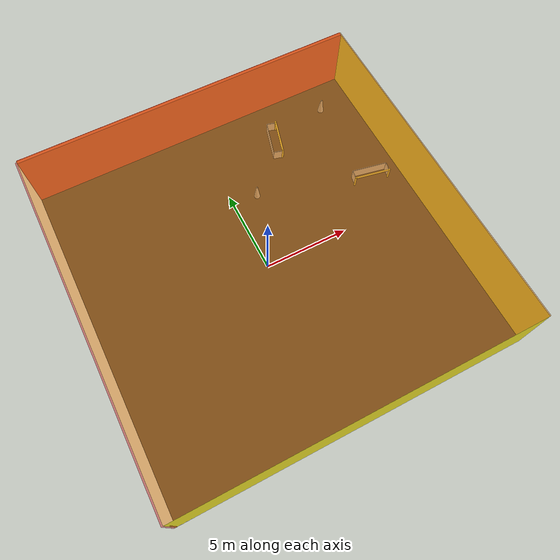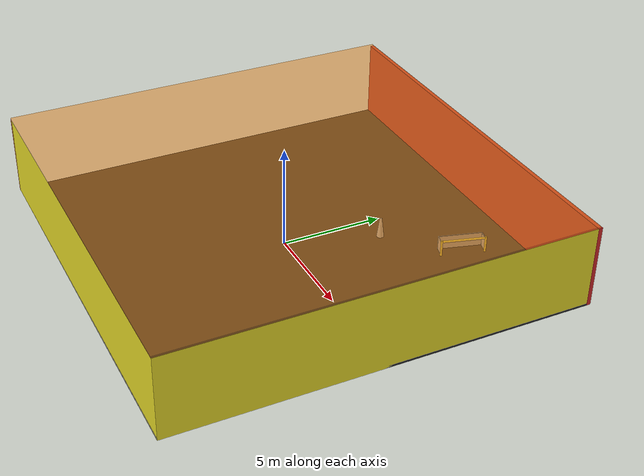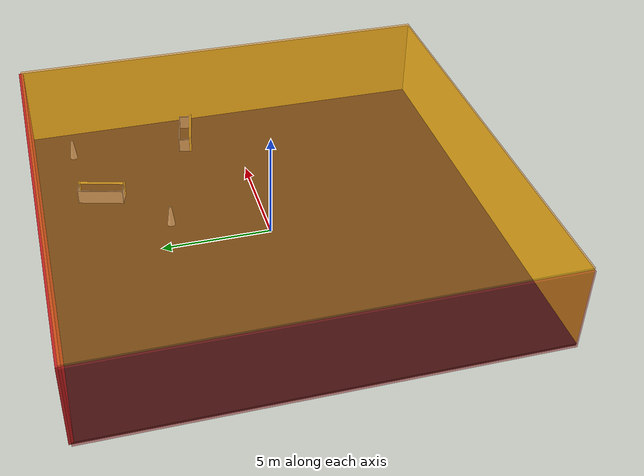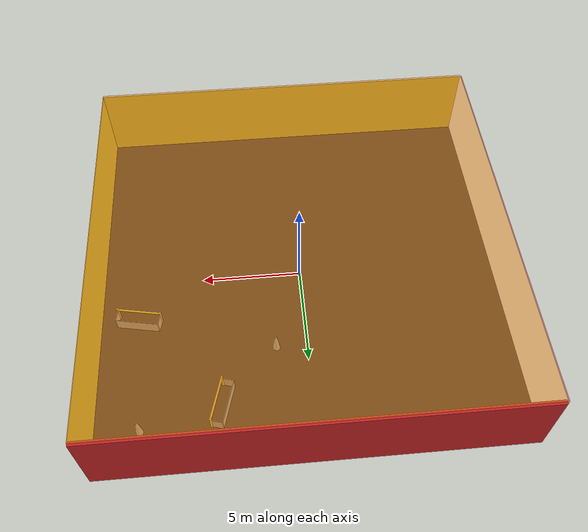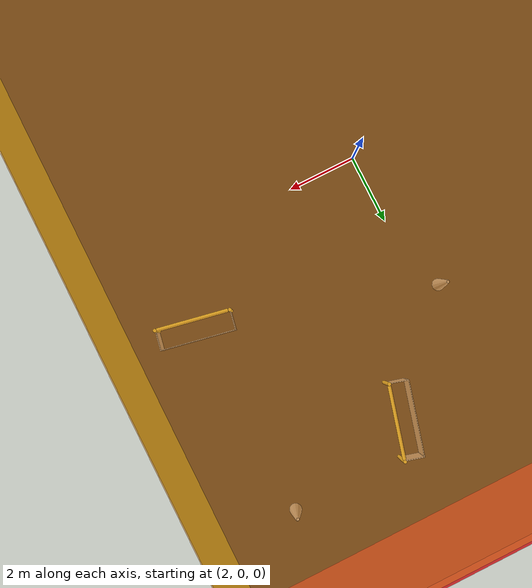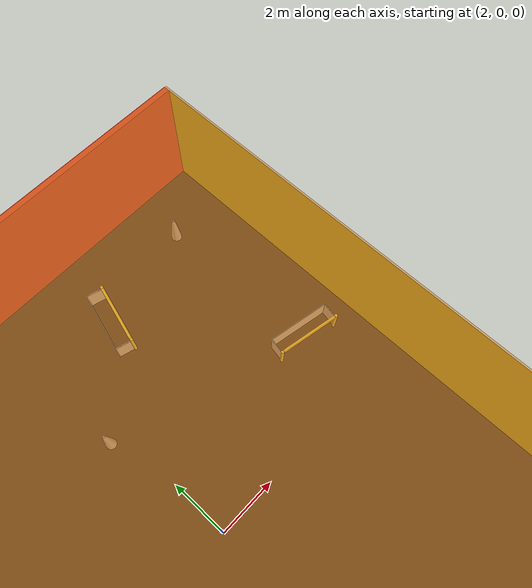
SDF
<sdf version="1.4">
 <world name="default">
  <physics type="ode">
   <max_step_size>0.001</max_step_size>
   <real_time_factor>1</real_time_factor>
   <real_time_update_rate>1000</real_time_update_rate>
   <gravity>0 0 -9.8</gravity>
  </physics>
  <scene><ambient>0.4 0.4 0.4 1</ambient><background>0.7 0.7 0.7 1</background><shadows>1</shadows></scene>
  <model name="Surrounding">
   <static>1</static>
   <link name="Ceiling">
    <collision name="Ceiling_Collision"><geometry><box><size>20 20 0.1</size></box></geometry></collision>
    <visual name="Ceiling_Visual">
     <geometry><box><size>20 20 0.1</size></box></geometry>
     <material>
      <script>
       <uri>file://media/materials/scripts/gazebo.material</uri>
       <name>Gazebo/OrangeTransparent</name>
      </script>
     </material>
    </visual>
    <pose>0 0 4.05 0 0 0</pose>
   </link>
   <link name="Wall_South">
    <collision name="Wall_South_Collision">
     <geometry><box><size>20 0 4</size></box></geometry>
     <pose>0 0 2 0 -0 0</pose>
    </collision>
    <visual name="Wall_South_Visual">
     <pose>0 0 2 0 -0 0</pose>
     <geometry><box><size>20 0 4</size></box></geometry>
     <material>
      <script><uri>file://media/materials/scripts/gazebo.material</uri><name>Gazebo/Yellow</name></script>
     </material>
    </visual>
    <velocity_decay><linear>0</linear><angular>0</angular></velocity_decay>
    <pose>0 -10 0 0 -0 0</pose>
   </link>
   <link name="Wall_East">
    <collision name="Wall_21_Collision">
     <geometry><box><size>20 0 4</size></box></geometry>
     <pose>0 0 2 0 -0 0</pose>
    </collision>
    <visual name="Wall_21_Visual">
     <pose>0 0 2 0 -0 0</pose>
     <geometry><box><size>20 0 4</size></box></geometry>
     <material>
      <script><uri>file://media/materials/scripts/gazebo.material</uri><name>Gazebo/YellowGlow</name></script>
     </material>
    </visual>
    <velocity_decay><linear>0</linear><angular>0</angular></velocity_decay>
    <pose>10 0 0 0 -0 1.5708</pose>
   </link>
   <link name="Wall_North">
    <collision name="Wall_22_Collision">
     <geometry><box><size>20 0.2 4</size></box></geometry>
     <pose>0 0 2 0 -0 0</pose>
    </collision>
    <visual name="Wall_22_Visual">
     <pose>0 0 2 0 -0 0</pose>
     <geometry><box><size>20 0.2 4</size></box></geometry>
     <material>
      <script><uri>file://media/materials/scripts/gazebo.material</uri><name>Gazebo/RedBright</name></script>
     </material>
    </visual>
    <velocity_decay><linear>0</linear><angular>0</angular></velocity_decay>
    <pose>0 10 0 0 -0 0</pose>
   </link>
   <link name="Wall_West">
    <collision name="Wall_23_Collision">
     <geometry><box><size>20 0.2 4</size></box></geometry>
     <pose>0 0 2 0 -0 0</pose>
    </collision>
    <visual name="Wall_23_Visual">
     <pose>0 0 2 0 -0 0</pose>
     <geometry><box><size>20 0.2 4</size></box></geometry>
     <material>
      <script><uri>file://media/materials/scripts/gazebo.material</uri><name>Gazebo/RedTransparent</name></script>
     </material>
    </visual>
    <velocity_decay><linear>0</linear><angular>0</angular></velocity_decay>
    <pose>-10 0 0 0 0 -1.5708</pose>
   </link>
   <link name="Ground_link">
    <collision name="collision">
     <pose>0 0 .05 0 -0 0</pose>
     <geometry><box><size>20 20 0.1</size></box></geometry>
    </collision>
    <visual name="visual">
     <pose>0 0 .05 0 -0 0</pose>
     <geometry><box><size>20 20 0.1</size></box></geometry>
     <material>
      <script><uri>file://media/materials/scripts/gazebo.material</uri><name>Gazebo/FlatBlack</name></script>
     </material>
    </visual>
   </link>
   <static>1</static>
  </model>
  <spherical_coordinates>
   <surface_model>EARTH_WGS84</surface_model>
   <latitude_deg>0</latitude_deg>
   <longitude_deg>0</longitude_deg>
   <elevation>0</elevation>
   <heading_deg>0</heading_deg>
  </spherical_coordinates>
  <light name="lightball_0" type="diffuse">
   <diffuse>0.8 0.8 0.8 1</diffuse>
   <specular>0.2 0.2 0.2 1</specular>
   <attenuation>
    <range>100</range>
    <constant>0.7</constant>
    <linear>0.01</linear>
    <quadratic>0.001</quadratic>
   </attenuation>
   <direction>-0.5 0.1 -0.9</direction>
   <pose>-4.95083053598 4.18988742543 0.772949026911 0 0 0</pose>
  </light>
  <light name="lightball_1" type="diffuse">
   <diffuse>0.8 0.8 0.8 1</diffuse>
   <specular>0.2 0.2 0.2 1</specular>
   <attenuation>
    <range>100</range>
    <constant>0.7</constant>
    <linear>0.01</linear>
    <quadratic>0.001</quadratic>
   </attenuation>
   <direction>-0.5 0.1 -0.9</direction>
   <pose>3.17342726647 8.47622148887 3.51902212505 0 0 0</pose>
  </light>
  <light name="lightball_2" type="diffuse">
   <diffuse>0.8 0.8 0.8 1</diffuse>
   <specular>0.2 0.2 0.2 1</specular>
   <attenuation>
    <range>100</range>
    <constant>0.7</constant>
    <linear>0.01</linear>
    <quadratic>0.001</quadratic>
   </attenuation>
   <direction>-0.5 0.1 -0.9</direction>
   <pose>7.07802612022 -5.76666487442 2.21263045096 0 0 0</pose>
  </light>
  <light name="lightball_3" type="diffuse">
   <diffuse>0.8 0.8 0.8 1</diffuse>
   <specular>0.2 0.2 0.2 1</specular>
   <attenuation>
    <range>100</range>
    <constant>0.7</constant>
    <linear>0.01</linear>
    <quadratic>0.001</quadratic>
   </attenuation>
   <direction>-0.5 0.1 -0.9</direction>
   <pose>0.154637514036 -9.97233112799 1.9669074314 0 0 0</pose>
  </light>
  <light name="lightball_4" type="diffuse">
   <diffuse>0.8 0.8 0.8 1</diffuse>
   <specular>0.2 0.2 0.2 1</specular>
   <attenuation>
    <range>100</range>
    <constant>0.7</constant>
    <linear>0.01</linear>
    <quadratic>0.001</quadratic>
   </attenuation>
   <direction>-0.5 0.1 -0.9</direction>
   <pose>3.58215922622 3.08481089853 2.00536578677 0 0 0</pose>
  </light>
  <include>
   <uri>model://construction_cone</uri>
   <pose>1.50408808697 4.30787398465 0 0 0 1.19663750094</pose>
  </include>
  <include>
   <uri>model://robocup_3Dsim_goal</uri>
   <pose>4.41064760042 7.07111796036 0 0 0 2.8696991049</pose>
  </include>
  <include>
   <uri>model://robocup_3Dsim_goal</uri>
   <pose>8.08748723087 2.14546316918 0 0 0 1.37834946917</pose>
  </include>
  <include>
   <uri>model://construction_cone</uri>
   <pose>7.92153490107 8.08541081361 0 0 0 2.80119638106</pose>
  </include>
 </world>
</sdf>

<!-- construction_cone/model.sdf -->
<sdf version="1.5">
  <model name="Construction Cone">
    <link name="link">
      <collision name="collision">
        <geometry>
          <mesh>
            <scale>10 10 10</scale>
            <uri>file://isr-testbed/construction_cone/meshes/construction_cone.dae</uri>
          </mesh>
        </geometry>
      </collision>
      <visual name="visual">
        <geometry>
          <mesh>
            <scale>10 10 10</scale>
            <uri>file://isr-testbed/construction_cone/meshes/construction_cone.dae</uri>
          </mesh>
        </geometry>
      </visual>
    </link>
  </model>
</sdf>

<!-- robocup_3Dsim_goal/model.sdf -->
<sdf version="1.5">
  <model name="robocup_3d_goal">
    <static>true</static>
    <link name="left_post">
      <pose>0 1.05 0.45 0 0 0</pose>
      <collision name="collision">
        <geometry>
          <cylinder>
            <radius>0.05</radius>
            <length>0.9</length>
          </cylinder>
        </geometry>
      </collision>
      <visual name="visual">
        <geometry>
          <cylinder>
            <radius>0.05</radius>
            <length>0.9</length>
          </cylinder>
        </geometry>
        <material>
          <script>
            <uri>file://media/materials/scripts/gazebo.material</uri>
            <name>Gazebo/ZincYellow</name>
          </script>
        </material>
      </visual>
    </link>
    <link name="left_support_horiz_lower">
      <pose>0.30 1.05 0.01 0 0 0</pose>
      <collision name="collision">
        <geometry>
          <box>
            <size>0.50 0.02 0.02</size>
          </box>
        </geometry>
      </collision>
      <visual name="visual">
        <geometry>
          <box>
            <size>0.50 0.02 0.02</size>
          </box>
        </geometry>
        <material>
          <script>
            <uri>file://media/materials/scripts/gazebo.material</uri>
            <name>Gazebo/White</name>
          </script>
        </material>
      </visual>
    </link>
    <link name="left_support_horiz_upper">
      <pose>0.30 1.05 0.79 0 0 0</pose>
      <collision name="collision">
        <geometry>
          <box>
            <size>0.50 0.02 0.02</size>
          </box>
        </geometry>
      </collision>
      <visual name="visual">
        <geometry>
          <box>
            <size>0.50 0.02 0.02</size>
          </box>
        </geometry>
        <material>
          <script>
            <uri>file://media/materials/scripts/gazebo.material</uri>
            <name>Gazebo/White</name>
          </script>
        </material>
      </visual>
    </link>
    <link name="left_support_vertical">
      <pose>0.56 1.05 0.4 0 1.5708 0</pose>
      <collision name="collision">
        <geometry>
          <box>
            <size>0.80 0.02 0.02</size>
          </box>
        </geometry>
      </collision>
      <visual name="visual">
        <geometry>
          <box>
            <size>0.80 0.02 0.02</size>
          </box>
        </geometry>
        <material>
          <script>
            <uri>file://media/materials/scripts/gazebo.material</uri>
            <name>Gazebo/White</name>
          </script>
        </material>
      </visual>
    </link>
    <link name="right_support_horiz_lower">
      <pose>0.30 -1.05 0.01 0 0 0</pose>
      <collision name="collision">
        <geometry>
          <box>
            <size>0.50 0.02 0.02</size>
          </box>
        </geometry>
      </collision>
      <visual name="visual">
        <geometry>
          <box>
            <size>0.50 0.02 0.02</size>
          </box>
        </geometry>
        <material>
          <script>
            <uri>file://media/materials/scripts/gazebo.material</uri>
            <name>Gazebo/White</name>
          </script>
        </material>
      </visual>
    </link>
    <link name="right_support_horiz_upper">
      <pose>0.30 -1.05 0.79 0 0 0</pose>
      <collision name="collision">
        <geometry>
          <box>
            <size>0.50 0.02 0.02</size>
          </box>
        </geometry>
      </collision>
      <visual name="visual">
        <geometry>
          <box>
            <size>0.50 0.02 0.02</size>
          </box>
        </geometry>
        <material>
          <script>
            <uri>file://media/materials/scripts/gazebo.material</uri>
            <name>Gazebo/White</name>
          </script>
        </material>
      </visual>
    </link>
    <link name="right_support_vertical">
      <pose>0.56 -1.05 0.4 0 1.5708 0</pose>
      <collision name="collision">
        <geometry>
          <box>
            <size>0.80 0.02 0.02</size>
          </box>
        </geometry>
      </collision>
      <visual name="visual">
        <geometry>
          <box>
            <size>0.80 0.02 0.02</size>
          </box>
        </geometry>
        <material>
          <script>
            <uri>file://media/materials/scripts/gazebo.material</uri>
            <name>Gazebo/White</name>
          </script>
        </material>
      </visual>
    </link>
    <link name="center_support_horiz_lower">
      <pose>0.56 0 0.01 0 1.5708 0</pose>
      <collision name="collision">
        <geometry>
          <box>
            <size>0.02 2.08 0.02</size>
          </box>
        </geometry>
      </collision>
      <visual name="visual">
        <geometry>
          <box>
            <size>0.02 2.08 0.02</size>
          </box>
        </geometry>
        <material>
          <script>
            <uri>file://media/materials/scripts/gazebo.material</uri>
            <name>Gazebo/White</name>
          </script>
        </material>
      </visual>
    </link>
    <link name="center_support_horiz_upper">
      <pose>0.56 0 0.79 0 1.5708 0</pose>
      <collision name="collision">
        <geometry>
          <box>
            <size>0.02 2.08 0.02</size>
          </box>
        </geometry>
      </collision>
      <visual name="visual">
        <geometry>
          <box>
            <size>0.02 2.08 0.02</size>
          </box>
        </geometry>
        <material>
          <script>
            <uri>file://media/materials/scripts/gazebo.material</uri>
            <name>Gazebo/White</name>
          </script>
        </material>
      </visual>
    </link>
    <link name="right_post">
      <pose>0 -1.05 0.45 0 0 0</pose>
      <collision name="collision">
        <geometry>
          <cylinder>
            <radius>0.05</radius>
            <length>0.9</length>
          </cylinder>
        </geometry>
      </collision>
      <visual name="visual">
        <geometry>
          <cylinder>
            <radius>0.05</radius>
            <length>0.9</length>
          </cylinder>
        </geometry>
        <material>
          <script>
            <uri>file://media/materials/scripts/gazebo.material</uri>
            <name>Gazebo/ZincYellow</name>
          </script>
        </material>
      </visual>
    </link>
    <link name="crossbar">
      <pose>0 0 0.85 1.57 1.57 0</pose>
      <collision name="collision">
        <geometry>
          <cylinder>
            <radius>0.05</radius>
            <length>2.0</length>
          </cylinder>
        </geometry>
      </collision>
      <visual name="visual">
        <geometry>
          <cylinder>
            <radius>0.05</radius>
            <length>2.0</length>
          </cylinder>
        </geometry>
        <material>
          <script>
            <uri>file://media/materials/scripts/gazebo.material</uri>
            <name>Gazebo/ZincYellow</name>
          </script>
        </material>
      </visual>
    </link>
    <link name="center_net">
      <pose>0.56 0 0.40 0 0 0</pose>
      <collision name="collision">
        <geometry>
          <box>
            <size>0.01 2.1 0.80</size>
          </box>
        </geometry>
      </collision>
      <visual name="visual">
        <geometry>
          <box>
            <size>0.01 2.1 0.80</size>
          </box>
        </geometry>
        <material>
          <script>
            <uri>model://../model_source/models/robocup09_spl_field/materials/scripts/</uri>
            <uri>model://../model_source/models/robocup09_spl_field/materials/textures/</uri>
            <name>RoboCup/Net</name>
          </script>
        </material>
      </visual>
    </link>
    <link name="left_net">
      <pose>0.30 1.05 0.40 0 0 0</pose>
      <collision name="collision">
        <geometry>
          <box>
            <size>0.50 0.01 0.76</size>
          </box>
        </geometry>
      </collision>
      <visual name="visual">
        <geometry>
          <box>
            <size>0.50 0.01 0.76</size>
          </box>
        </geometry>
        <material>
          <script>
            <uri>model://../model_source/models/robocup09_spl_field/materials/scripts/</uri>
            <uri>model://../model_source/models/robocup09_spl_field/materials/textures/</uri>
            <name>RoboCup/Net</name>
          </script>
        </material>
      </visual>
    </link>
    <link name="right_net">
      <pose>0.30 -1.05 0.40 0 0 0</pose>
      <collision name="collision">
        <geometry>
          <box>
            <size>0.50 0.01 0.76</size>
          </box>
        </geometry>
      </collision>
      <visual name="visual">
        <geometry>
          <box>
            <size>0.50 0.01 0.76</size>
          </box>
        </geometry>
        <material>
          <script>
            <uri>model://../model_source/models/robocup09_spl_field/materials/scripts/</uri>
            <uri>model://../model_source/models/robocup09_spl_field/materials/textures/</uri>
            <name>RoboCup/Net</name>
          </script>
        </material>
      </visual>
    </link>
  </model>
</sdf>
